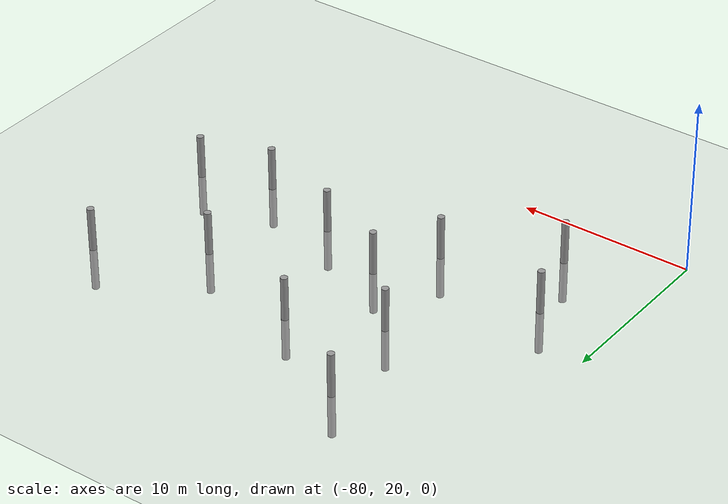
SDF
<sdf version="1.6">
 <world name="default">
  <model name="ground_plane">
   <static>1</static>
   <link name="link">
    <collision name="collision">
     <geometry><plane><normal>0 0 1</normal><size>100 100</size></plane></geometry>
     <surface><friction><ode><mu>100</mu><mu2>50</mu2></ode></friction></surface>
    </collision>
    <visual name="visual">
     <cast_shadows>0</cast_shadows>
     <geometry><plane><normal>0 0 1</normal><size>100 100</size></plane></geometry>
     <material>
      <script><uri>file://media/materials/scripts/gazebo.material</uri><name>Gazebo/Grey</name></script>
     </material>
    </visual>
   </link>
  </model>
  <model name="empty_pillars_6">
   <link name="link">
    <inertial>
     <mass>1</mass>
     <inertia><ixx>0.145833</ixx><ixy>0</ixy><ixz>0</ixz><iyy>0.145833</iyy><iyz>0</iyz><izz>0.125</izz></inertia>
    </inertial>
    <visual name="visual">
     <geometry><cylinder><radius>0.2</radius><length>5</length></cylinder></geometry>
     <material>
      <script><name>Gazebo/Grey</name><uri>file://media/materials/scripts/gazebo.material</uri></script>
      <shader type="vertex"><normal_map>__default__</normal_map></shader>
      <ambient>0.3 0.3 0.3 1</ambient>
      <diffuse>0.7 0.7 0.7 1</diffuse>
      <specular>0.01 0.01 0.01 1</specular>
      <emissive>0 0 0 1</emissive>
     </material>
    </visual>
    <collision name="collision">
     <geometry><cylinder><radius>0.05</radius><length>5</length></cylinder></geometry>
     <surface>
      <friction>
       <ode><mu>1</mu><mu2>1</mu2><fdir1>0 0 0</fdir1><slip1>0</slip1><slip2>0</slip2></ode>
       <torsional>
        <coefficient>1</coefficient>
        <patch_radius>0</patch_radius>
        <surface_radius>0</surface_radius>
        <use_patch_radius>1</use_patch_radius>
        <ode><slip>0</slip></ode>
       </torsional>
      </friction>
      <bounce><restitution_coefficient>0</restitution_coefficient><threshold>1e+06</threshold></bounce>
      <contact>
       <collide_without_contact>0</collide_without_contact>
       <collide_without_contact_bitmask>1</collide_without_contact_bitmask>
       <collide_bitmask>1</collide_bitmask>
       <ode>
        <soft_cfm>0</soft_cfm>
        <soft_erp>0.2</soft_erp>
        <kp>1e+13</kp>
        <kd>1</kd>
        <max_vel>0.01</max_vel>
        <min_depth>0</min_depth>
       </ode>
       <bullet>
        <split_impulse>1</split_impulse>
        <split_impulse_penetration_threshold>-0.01</split_impulse_penetration_threshold>
        <soft_cfm>0</soft_cfm>
        <soft_erp>0.2</soft_erp>
        <kp>1e+13</kp>
        <kd>1</kd>
       </bullet>
      </contact>
     </surface>
    </collision>
   </link>
   <model name="empty_pillar_clone">
    <link name="link">
     <inertial>
      <mass>1</mass>
      <inertia><ixx>0.145833</ixx><ixy>0</ixy><ixz>0</ixz><iyy>0.145833</iyy><iyz>0</iyz><izz>0.125</izz></inertia>
     </inertial>
     <visual name="visual">
      <geometry><cylinder><radius>0.2</radius><length>5</length></cylinder></geometry>
      <material>
       <script><name>Gazebo/Grey</name><uri>file://media/materials/scripts/gazebo.material</uri></script>
       <shader type="vertex"><normal_map>__default__</normal_map></shader>
       <ambient>0.3 0.3 0.3 1</ambient>
       <diffuse>0.7 0.7 0.7 1</diffuse>
       <specular>0.01 0.01 0.01 1</specular>
       <emissive>0 0 0 1</emissive>
      </material>
     </visual>
     <collision name="collision">
      <geometry><cylinder><radius>0.05</radius><length>5</length></cylinder></geometry>
      <surface>
       <friction>
        <ode><mu>1</mu><mu2>1</mu2><fdir1>0 0 0</fdir1><slip1>0</slip1><slip2>0</slip2></ode>
        <torsional>
         <coefficient>1</coefficient>
         <patch_radius>0</patch_radius>
         <surface_radius>0</surface_radius>
         <use_patch_radius>1</use_patch_radius>
         <ode><slip>0</slip></ode>
        </torsional>
       </friction>
       <bounce><restitution_coefficient>0</restitution_coefficient><threshold>1e+06</threshold></bounce>
       <contact>
        <collide_without_contact>0</collide_without_contact>
        <collide_without_contact_bitmask>1</collide_without_contact_bitmask>
        <collide_bitmask>1</collide_bitmask>
        <ode>
         <soft_cfm>0</soft_cfm>
         <soft_erp>0.2</soft_erp>
         <kp>1e+13</kp>
         <kd>1</kd>
         <max_vel>0.01</max_vel>
         <min_depth>0</min_depth>
        </ode>
        <bullet>
         <split_impulse>1</split_impulse>
         <split_impulse_penetration_threshold>-0.01</split_impulse_penetration_threshold>
         <soft_cfm>0</soft_cfm>
         <soft_erp>0.2</soft_erp>
         <kp>1e+13</kp>
         <kd>1</kd>
        </bullet>
       </contact>
      </surface>
     </collision>
    </link>
    <static>0</static>
    <pose>1.47843 -4.49529 0 0 -0 0</pose>
   </model>
   <model name="empty_pillar_clone_1">
    <link name="link">
     <inertial>
      <mass>1</mass>
      <inertia><ixx>0.145833</ixx><ixy>0</ixy><ixz>0</ixz><iyy>0.145833</iyy><iyz>0</iyz><izz>0.125</izz></inertia>
     </inertial>
     <visual name="visual">
      <geometry><cylinder><radius>0.2</radius><length>5</length></cylinder></geometry>
      <material>
       <script><name>Gazebo/Grey</name><uri>file://media/materials/scripts/gazebo.material</uri></script>
       <shader type="vertex"><normal_map>__default__</normal_map></shader>
       <ambient>0.3 0.3 0.3 1</ambient>
       <diffuse>0.7 0.7 0.7 1</diffuse>
       <specular>0.01 0.01 0.01 1</specular>
       <emissive>0 0 0 1</emissive>
      </material>
     </visual>
     <collision name="collision">
      <geometry><cylinder><radius>0.05</radius><length>5</length></cylinder></geometry>
      <surface>
       <friction>
        <ode><mu>1</mu><mu2>1</mu2><fdir1>0 0 0</fdir1><slip1>0</slip1><slip2>0</slip2></ode>
        <torsional>
         <coefficient>1</coefficient>
         <patch_radius>0</patch_radius>
         <surface_radius>0</surface_radius>
         <use_patch_radius>1</use_patch_radius>
         <ode><slip>0</slip></ode>
        </torsional>
       </friction>
       <bounce><restitution_coefficient>0</restitution_coefficient><threshold>1e+06</threshold></bounce>
       <contact>
        <collide_without_contact>0</collide_without_contact>
        <collide_without_contact_bitmask>1</collide_without_contact_bitmask>
        <collide_bitmask>1</collide_bitmask>
        <ode>
         <soft_cfm>0</soft_cfm>
         <soft_erp>0.2</soft_erp>
         <kp>1e+13</kp>
         <kd>1</kd>
         <max_vel>0.01</max_vel>
         <min_depth>0</min_depth>
        </ode>
        <bullet>
         <split_impulse>1</split_impulse>
         <split_impulse_penetration_threshold>-0.01</split_impulse_penetration_threshold>
         <soft_cfm>0</soft_cfm>
         <soft_erp>0.2</soft_erp>
         <kp>1e+13</kp>
         <kd>1</kd>
        </bullet>
       </contact>
      </surface>
     </collision>
    </link>
    <static>0</static>
    <pose>8.92248 2.14838 0 0 -0 0</pose>
   </model>
   <model name="empty_pillar_clone_2">
    <link name="link">
     <inertial>
      <mass>1</mass>
      <inertia><ixx>0.145833</ixx><ixy>0</ixy><ixz>0</ixz><iyy>0.145833</iyy><iyz>0</iyz><izz>0.125</izz></inertia>
     </inertial>
     <visual name="visual">
      <geometry><cylinder><radius>0.2</radius><length>5</length></cylinder></geometry>
      <material>
       <script><name>Gazebo/Grey</name><uri>file://media/materials/scripts/gazebo.material</uri></script>
       <shader type="vertex"><normal_map>__default__</normal_map></shader>
       <ambient>0.3 0.3 0.3 1</ambient>
       <diffuse>0.7 0.7 0.7 1</diffuse>
       <specular>0.01 0.01 0.01 1</specular>
       <emissive>0 0 0 1</emissive>
      </material>
     </visual>
     <collision name="collision">
      <geometry><cylinder><radius>0.05</radius><length>5</length></cylinder></geometry>
      <surface>
       <friction>
        <ode><mu>1</mu><mu2>1</mu2><fdir1>0 0 0</fdir1><slip1>0</slip1><slip2>0</slip2></ode>
        <torsional>
         <coefficient>1</coefficient>
         <patch_radius>0</patch_radius>
         <surface_radius>0</surface_radius>
         <use_patch_radius>1</use_patch_radius>
         <ode><slip>0</slip></ode>
        </torsional>
       </friction>
       <bounce><restitution_coefficient>0</restitution_coefficient><threshold>1e+06</threshold></bounce>
       <contact>
        <collide_without_contact>0</collide_without_contact>
        <collide_without_contact_bitmask>1</collide_without_contact_bitmask>
        <collide_bitmask>1</collide_bitmask>
        <ode>
         <soft_cfm>0</soft_cfm>
         <soft_erp>0.2</soft_erp>
         <kp>1e+13</kp>
         <kd>1</kd>
         <max_vel>0.01</max_vel>
         <min_depth>0</min_depth>
        </ode>
        <bullet>
         <split_impulse>1</split_impulse>
         <split_impulse_penetration_threshold>-0.01</split_impulse_penetration_threshold>
         <soft_cfm>0</soft_cfm>
         <soft_erp>0.2</soft_erp>
         <kp>1e+13</kp>
         <kd>1</kd>
        </bullet>
       </contact>
      </surface>
     </collision>
    </link>
    <static>0</static>
    <pose>6.92427 -1.06221 0 0 -0 0</pose>
   </model>
   <model name="empty_pillar_clone_27">
    <link name="link">
     <inertial>
      <mass>1</mass>
      <inertia><ixx>0.145833</ixx><ixy>0</ixy><ixz>0</ixz><iyy>0.145833</iyy><iyz>0</iyz><izz>0.125</izz></inertia>
     </inertial>
     <visual name="visual">
      <geometry><cylinder><radius>0.2</radius><length>5</length></cylinder></geometry>
      <material>
       <script><name>Gazebo/Grey</name><uri>file://media/materials/scripts/gazebo.material</uri></script>
       <shader type="vertex"><normal_map>__default__</normal_map></shader>
       <ambient>0.3 0.3 0.3 1</ambient>
       <diffuse>0.7 0.7 0.7 1</diffuse>
       <specular>0.01 0.01 0.01 1</specular>
       <emissive>0 0 0 1</emissive>
      </material>
     </visual>
     <collision name="collision">
      <geometry><cylinder><radius>0.05</radius><length>5</length></cylinder></geometry>
      <surface>
       <friction>
        <ode><mu>1</mu><mu2>1</mu2><fdir1>0 0 0</fdir1><slip1>0</slip1><slip2>0</slip2></ode>
        <torsional>
         <coefficient>1</coefficient>
         <patch_radius>0</patch_radius>
         <surface_radius>0</surface_radius>
         <use_patch_radius>1</use_patch_radius>
         <ode><slip>0</slip></ode>
        </torsional>
       </friction>
       <bounce><restitution_coefficient>0</restitution_coefficient><threshold>1e+06</threshold></bounce>
       <contact>
        <collide_without_contact>0</collide_without_contact>
        <collide_without_contact_bitmask>1</collide_without_contact_bitmask>
        <collide_bitmask>1</collide_bitmask>
        <ode>
         <soft_cfm>0</soft_cfm>
         <soft_erp>0.2</soft_erp>
         <kp>1e+13</kp>
         <kd>1</kd>
         <max_vel>0.01</max_vel>
         <min_depth>0</min_depth>
        </ode>
        <bullet>
         <split_impulse>1</split_impulse>
         <split_impulse_penetration_threshold>-0.01</split_impulse_penetration_threshold>
         <soft_cfm>0</soft_cfm>
         <soft_erp>0.2</soft_erp>
         <kp>1e+13</kp>
         <kd>1</kd>
        </bullet>
       </contact>
      </surface>
     </collision>
    </link>
    <static>0</static>
    <pose>4.32163 11.823 0 0 -0 0</pose>
   </model>
   <model name="empty_pillar_clone_29">
    <link name="link">
     <inertial>
      <mass>1</mass>
      <inertia><ixx>0.145833</ixx><ixy>0</ixy><ixz>0</ixz><iyy>0.145833</iyy><iyz>0</iyz><izz>0.125</izz></inertia>
     </inertial>
     <visual name="visual">
      <geometry><cylinder><radius>0.2</radius><length>5</length></cylinder></geometry>
      <material>
       <script><name>Gazebo/Grey</name><uri>file://media/materials/scripts/gazebo.material</uri></script>
       <shader type="vertex"><normal_map>__default__</normal_map></shader>
       <ambient>0.3 0.3 0.3 1</ambient>
       <diffuse>0.7 0.7 0.7 1</diffuse>
       <specular>0.01 0.01 0.01 1</specular>
       <emissive>0 0 0 1</emissive>
      </material>
     </visual>
     <collision name="collision">
      <geometry><cylinder><radius>0.05</radius><length>5</length></cylinder></geometry>
      <surface>
       <friction>
        <ode><mu>1</mu><mu2>1</mu2><fdir1>0 0 0</fdir1><slip1>0</slip1><slip2>0</slip2></ode>
        <torsional>
         <coefficient>1</coefficient>
         <patch_radius>0</patch_radius>
         <surface_radius>0</surface_radius>
         <use_patch_radius>1</use_patch_radius>
         <ode><slip>0</slip></ode>
        </torsional>
       </friction>
       <bounce><restitution_coefficient>0</restitution_coefficient><threshold>1e+06</threshold></bounce>
       <contact>
        <collide_without_contact>0</collide_without_contact>
        <collide_without_contact_bitmask>1</collide_without_contact_bitmask>
        <collide_bitmask>1</collide_bitmask>
        <ode>
         <soft_cfm>0</soft_cfm>
         <soft_erp>0.2</soft_erp>
         <kp>1e+13</kp>
         <kd>1</kd>
         <max_vel>0.01</max_vel>
         <min_depth>0</min_depth>
        </ode>
        <bullet>
         <split_impulse>1</split_impulse>
         <split_impulse_penetration_threshold>-0.01</split_impulse_penetration_threshold>
         <soft_cfm>0</soft_cfm>
         <soft_erp>0.2</soft_erp>
         <kp>1e+13</kp>
         <kd>1</kd>
        </bullet>
       </contact>
      </surface>
     </collision>
    </link>
    <static>0</static>
    <pose>10.08 8.0876 0 0 -0 0</pose>
   </model>
   <model name="empty_pillar_clone_31">
    <link name="link">
     <inertial>
      <mass>1</mass>
      <inertia><ixx>0.145833</ixx><ixy>0</ixy><ixz>0</ixz><iyy>0.145833</iyy><iyz>0</iyz><izz>0.125</izz></inertia>
     </inertial>
     <visual name="visual">
      <geometry><cylinder><radius>0.2</radius><length>5</length></cylinder></geometry>
      <material>
       <script><name>Gazebo/Grey</name><uri>file://media/materials/scripts/gazebo.material</uri></script>
       <shader type="vertex"><normal_map>__default__</normal_map></shader>
       <ambient>0.3 0.3 0.3 1</ambient>
       <diffuse>0.7 0.7 0.7 1</diffuse>
       <specular>0.01 0.01 0.01 1</specular>
       <emissive>0 0 0 1</emissive>
      </material>
     </visual>
     <collision name="collision">
      <geometry><cylinder><radius>0.05</radius><length>5</length></cylinder></geometry>
      <surface>
       <friction>
        <ode><mu>1</mu><mu2>1</mu2><fdir1>0 0 0</fdir1><slip1>0</slip1><slip2>0</slip2></ode>
        <torsional>
         <coefficient>1</coefficient>
         <patch_radius>0</patch_radius>
         <surface_radius>0</surface_radius>
         <use_patch_radius>1</use_patch_radius>
         <ode><slip>0</slip></ode>
        </torsional>
       </friction>
       <bounce><restitution_coefficient>0</restitution_coefficient><threshold>1e+06</threshold></bounce>
       <contact>
        <collide_without_contact>0</collide_without_contact>
        <collide_without_contact_bitmask>1</collide_without_contact_bitmask>
        <collide_bitmask>1</collide_bitmask>
        <ode>
         <soft_cfm>0</soft_cfm>
         <soft_erp>0.2</soft_erp>
         <kp>1e+13</kp>
         <kd>1</kd>
         <max_vel>0.01</max_vel>
         <min_depth>0</min_depth>
        </ode>
        <bullet>
         <split_impulse>1</split_impulse>
         <split_impulse_penetration_threshold>-0.01</split_impulse_penetration_threshold>
         <soft_cfm>0</soft_cfm>
         <soft_erp>0.2</soft_erp>
         <kp>1e+13</kp>
         <kd>1</kd>
        </bullet>
       </contact>
      </surface>
     </collision>
    </link>
    <static>0</static>
    <pose>22.0722 9.04182 0 0 -0 0</pose>
   </model>
   <model name="empty_pillar_clone_32">
    <link name="link">
     <inertial>
      <mass>1</mass>
      <inertia><ixx>0.145833</ixx><ixy>0</ixy><ixz>0</ixz><iyy>0.145833</iyy><iyz>0</iyz><izz>0.125</izz></inertia>
     </inertial>
     <visual name="visual">
      <geometry><cylinder><radius>0.2</radius><length>5</length></cylinder></geometry>
      <material>
       <script><name>Gazebo/Grey</name><uri>file://media/materials/scripts/gazebo.material</uri></script>
       <shader type="vertex"><normal_map>__default__</normal_map></shader>
       <ambient>0.3 0.3 0.3 1</ambient>
       <diffuse>0.7 0.7 0.7 1</diffuse>
       <specular>0.01 0.01 0.01 1</specular>
       <emissive>0 0 0 1</emissive>
      </material>
     </visual>
     <collision name="collision">
      <geometry><cylinder><radius>0.05</radius><length>5</length></cylinder></geometry>
      <surface>
       <friction>
        <ode><mu>1</mu><mu2>1</mu2><fdir1>0 0 0</fdir1><slip1>0</slip1><slip2>0</slip2></ode>
        <torsional>
         <coefficient>1</coefficient>
         <patch_radius>0</patch_radius>
         <surface_radius>0</surface_radius>
         <use_patch_radius>1</use_patch_radius>
         <ode><slip>0</slip></ode>
        </torsional>
       </friction>
       <bounce><restitution_coefficient>0</restitution_coefficient><threshold>1e+06</threshold></bounce>
       <contact>
        <collide_without_contact>0</collide_without_contact>
        <collide_without_contact_bitmask>1</collide_without_contact_bitmask>
        <collide_bitmask>1</collide_bitmask>
        <ode>
         <soft_cfm>0</soft_cfm>
         <soft_erp>0.2</soft_erp>
         <kp>1e+13</kp>
         <kd>1</kd>
         <max_vel>0.01</max_vel>
         <min_depth>0</min_depth>
        </ode>
        <bullet>
         <split_impulse>1</split_impulse>
         <split_impulse_penetration_threshold>-0.01</split_impulse_penetration_threshold>
         <soft_cfm>0</soft_cfm>
         <soft_erp>0.2</soft_erp>
         <kp>1e+13</kp>
         <kd>1</kd>
        </bullet>
       </contact>
      </surface>
     </collision>
    </link>
    <static>0</static>
    <pose>21.9854 0.15966 0 0 -0 0</pose>
   </model>
   <model name="empty_pillar_clone_55">
    <link name="link">
     <inertial>
      <mass>1</mass>
      <inertia><ixx>0.145833</ixx><ixy>0</ixy><ixz>0</ixz><iyy>0.145833</iyy><iyz>0</iyz><izz>0.125</izz></inertia>
     </inertial>
     <visual name="visual">
      <geometry><cylinder><radius>0.2</radius><length>5</length></cylinder></geometry>
      <material>
       <script><name>Gazebo/Grey</name><uri>file://media/materials/scripts/gazebo.material</uri></script>
       <shader type="vertex"><normal_map>__default__</normal_map></shader>
       <ambient>0.3 0.3 0.3 1</ambient>
       <diffuse>0.7 0.7 0.7 1</diffuse>
       <specular>0.01 0.01 0.01 1</specular>
       <emissive>0 0 0 1</emissive>
      </material>
     </visual>
     <collision name="collision">
      <geometry><cylinder><radius>0.05</radius><length>5</length></cylinder></geometry>
      <surface>
       <friction>
        <ode><mu>1</mu><mu2>1</mu2><fdir1>0 0 0</fdir1><slip1>0</slip1><slip2>0</slip2></ode>
        <torsional>
         <coefficient>1</coefficient>
         <patch_radius>0</patch_radius>
         <surface_radius>0</surface_radius>
         <use_patch_radius>1</use_patch_radius>
         <ode><slip>0</slip></ode>
        </torsional>
       </friction>
       <bounce><restitution_coefficient>0</restitution_coefficient><threshold>1e+06</threshold></bounce>
       <contact>
        <collide_without_contact>0</collide_without_contact>
        <collide_without_contact_bitmask>1</collide_without_contact_bitmask>
        <collide_bitmask>1</collide_bitmask>
        <ode>
         <soft_cfm>0</soft_cfm>
         <soft_erp>0.2</soft_erp>
         <kp>1e+13</kp>
         <kd>1</kd>
         <max_vel>0.01</max_vel>
         <min_depth>0</min_depth>
        </ode>
        <bullet>
         <split_impulse>1</split_impulse>
         <split_impulse_penetration_threshold>-0.01</split_impulse_penetration_threshold>
         <soft_cfm>0</soft_cfm>
         <soft_erp>0.2</soft_erp>
         <kp>1e+13</kp>
         <kd>1</kd>
        </bullet>
       </contact>
      </surface>
     </collision>
    </link>
    <static>0</static>
    <pose>13.2247 0.382706 0 0 -0 0</pose>
   </model>
   <model name="empty_pillar_clone_57">
    <link name="link">
     <inertial>
      <mass>1</mass>
      <inertia><ixx>0.145833</ixx><ixy>0</ixy><ixz>0</ixz><iyy>0.145833</iyy><iyz>0</iyz><izz>0.125</izz></inertia>
     </inertial>
     <visual name="visual">
      <geometry><cylinder><radius>0.2</radius><length>5</length></cylinder></geometry>
      <material>
       <script><name>Gazebo/Grey</name><uri>file://media/materials/scripts/gazebo.material</uri></script>
       <shader type="vertex"><normal_map>__default__</normal_map></shader>
       <ambient>0.3 0.3 0.3 1</ambient>
       <diffuse>0.7 0.7 0.7 1</diffuse>
       <specular>0.01 0.01 0.01 1</specular>
       <emissive>0 0 0 1</emissive>
      </material>
     </visual>
     <collision name="collision">
      <geometry><cylinder><radius>0.05</radius><length>5</length></cylinder></geometry>
      <surface>
       <friction>
        <ode><mu>1</mu><mu2>1</mu2><fdir1>0 0 0</fdir1><slip1>0</slip1><slip2>0</slip2></ode>
        <torsional>
         <coefficient>1</coefficient>
         <patch_radius>0</patch_radius>
         <surface_radius>0</surface_radius>
         <use_patch_radius>1</use_patch_radius>
         <ode><slip>0</slip></ode>
        </torsional>
       </friction>
       <bounce><restitution_coefficient>0</restitution_coefficient><threshold>1e+06</threshold></bounce>
       <contact>
        <collide_without_contact>0</collide_without_contact>
        <collide_without_contact_bitmask>1</collide_without_contact_bitmask>
        <collide_bitmask>1</collide_bitmask>
        <ode>
         <soft_cfm>0</soft_cfm>
         <soft_erp>0.2</soft_erp>
         <kp>1e+13</kp>
         <kd>1</kd>
         <max_vel>0.01</max_vel>
         <min_depth>0</min_depth>
        </ode>
        <bullet>
         <split_impulse>1</split_impulse>
         <split_impulse_penetration_threshold>-0.01</split_impulse_penetration_threshold>
         <soft_cfm>0</soft_cfm>
         <soft_erp>0.2</soft_erp>
         <kp>1e+13</kp>
         <kd>1</kd>
        </bullet>
       </contact>
      </surface>
     </collision>
    </link>
    <static>0</static>
    <pose>5.4355 5.86468 0 0 -0 0</pose>
   </model>
   <model name="empty_pillar_clone_7">
    <link name="link">
     <inertial>
      <mass>1</mass>
      <inertia><ixx>0.145833</ixx><ixy>0</ixy><ixz>0</ixz><iyy>0.145833</iyy><iyz>0</iyz><izz>0.125</izz></inertia>
     </inertial>
     <visual name="visual">
      <geometry><cylinder><radius>0.2</radius><length>5</length></cylinder></geometry>
      <material>
       <script><name>Gazebo/Grey</name><uri>file://media/materials/scripts/gazebo.material</uri></script>
       <shader type="vertex"><normal_map>__default__</normal_map></shader>
       <ambient>0.3 0.3 0.3 1</ambient>
       <diffuse>0.7 0.7 0.7 1</diffuse>
       <specular>0.01 0.01 0.01 1</specular>
       <emissive>0 0 0 1</emissive>
      </material>
     </visual>
     <collision name="collision">
      <geometry><cylinder><radius>0.05</radius><length>5</length></cylinder></geometry>
      <surface>
       <friction>
        <ode><mu>1</mu><mu2>1</mu2><fdir1>0 0 0</fdir1><slip1>0</slip1><slip2>0</slip2></ode>
        <torsional>
         <coefficient>1</coefficient>
         <patch_radius>0</patch_radius>
         <surface_radius>0</surface_radius>
         <use_patch_radius>1</use_patch_radius>
         <ode><slip>0</slip></ode>
        </torsional>
       </friction>
       <bounce><restitution_coefficient>0</restitution_coefficient><threshold>1e+06</threshold></bounce>
       <contact>
        <collide_without_contact>0</collide_without_contact>
        <collide_without_contact_bitmask>1</collide_without_contact_bitmask>
        <collide_bitmask>1</collide_bitmask>
        <ode>
         <soft_cfm>0</soft_cfm>
         <soft_erp>0.2</soft_erp>
         <kp>1e+13</kp>
         <kd>1</kd>
         <max_vel>0.01</max_vel>
         <min_depth>0</min_depth>
        </ode>
        <bullet>
         <split_impulse>1</split_impulse>
         <split_impulse_penetration_threshold>-0.01</split_impulse_penetration_threshold>
         <soft_cfm>0</soft_cfm>
         <soft_erp>0.2</soft_erp>
         <kp>1e+13</kp>
         <kd>1</kd>
        </bullet>
       </contact>
      </surface>
     </collision>
    </link>
    <static>0</static>
    <pose>16.9242 5.74519 0 0 -0 0</pose>
   </model>
   <model name="empty_pillar_clone_9">
    <link name="link">
     <inertial>
      <mass>1</mass>
      <inertia><ixx>0.145833</ixx><ixy>0</ixy><ixz>0</ixz><iyy>0.145833</iyy><iyz>0</iyz><izz>0.125</izz></inertia>
     </inertial>
     <visual name="visual">
      <geometry><cylinder><radius>0.2</radius><length>5</length></cylinder></geometry>
      <material>
       <script><name>Gazebo/Grey</name><uri>file://media/materials/scripts/gazebo.material</uri></script>
       <shader type="vertex"><normal_map>__default__</normal_map></shader>
       <ambient>0.3 0.3 0.3 1</ambient>
       <diffuse>0.7 0.7 0.7 1</diffuse>
       <specular>0.01 0.01 0.01 1</specular>
       <emissive>0 0 0 1</emissive>
      </material>
     </visual>
     <collision name="collision">
      <geometry><cylinder><radius>0.05</radius><length>5</length></cylinder></geometry>
      <surface>
       <friction>
        <ode><mu>1</mu><mu2>1</mu2><fdir1>0 0 0</fdir1><slip1>0</slip1><slip2>0</slip2></ode>
        <torsional>
         <coefficient>1</coefficient>
         <patch_radius>0</patch_radius>
         <surface_radius>0</surface_radius>
         <use_patch_radius>1</use_patch_radius>
         <ode><slip>0</slip></ode>
        </torsional>
       </friction>
       <bounce><restitution_coefficient>0</restitution_coefficient><threshold>1e+06</threshold></bounce>
       <contact>
        <collide_without_contact>0</collide_without_contact>
        <collide_without_contact_bitmask>1</collide_without_contact_bitmask>
        <collide_bitmask>1</collide_bitmask>
        <ode>
         <soft_cfm>0</soft_cfm>
         <soft_erp>0.2</soft_erp>
         <kp>1e+13</kp>
         <kd>1</kd>
         <max_vel>0.01</max_vel>
         <min_depth>0</min_depth>
        </ode>
        <bullet>
         <split_impulse>1</split_impulse>
         <split_impulse_penetration_threshold>-0.01</split_impulse_penetration_threshold>
         <soft_cfm>0</soft_cfm>
         <soft_erp>0.2</soft_erp>
         <kp>1e+13</kp>
         <kd>1</kd>
        </bullet>
       </contact>
      </surface>
     </collision>
    </link>
    <static>0</static>
    <pose>18.1111 -1.13899 0 0 -0 0</pose>
   </model>
   <static>0</static>
   <pose>-75.8833 27.5686 0 0 -0 0</pose>
  </model>
 </world>
</sdf>
